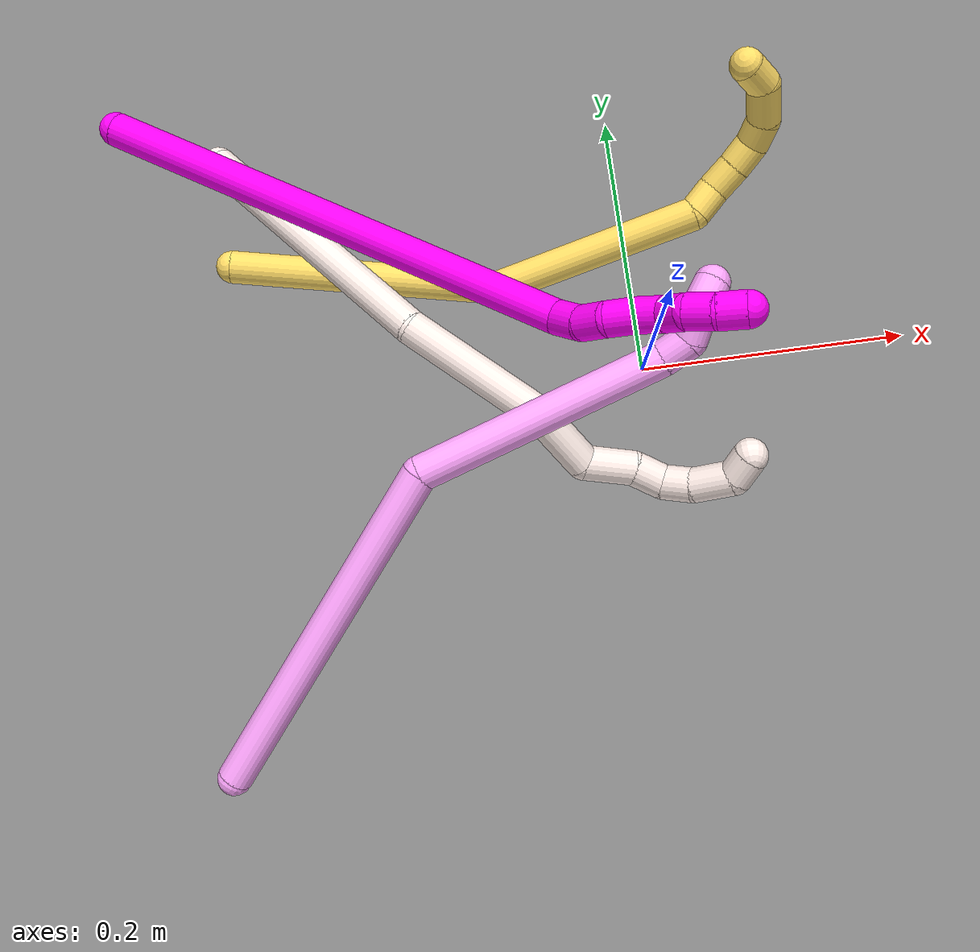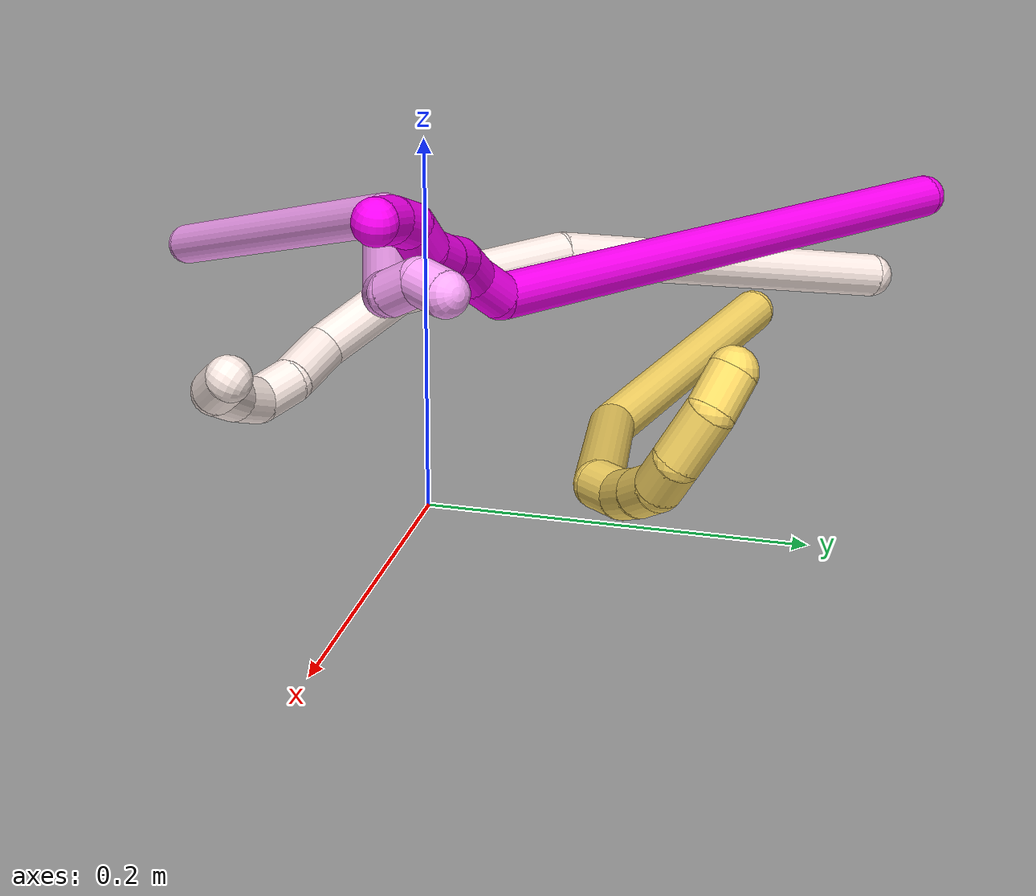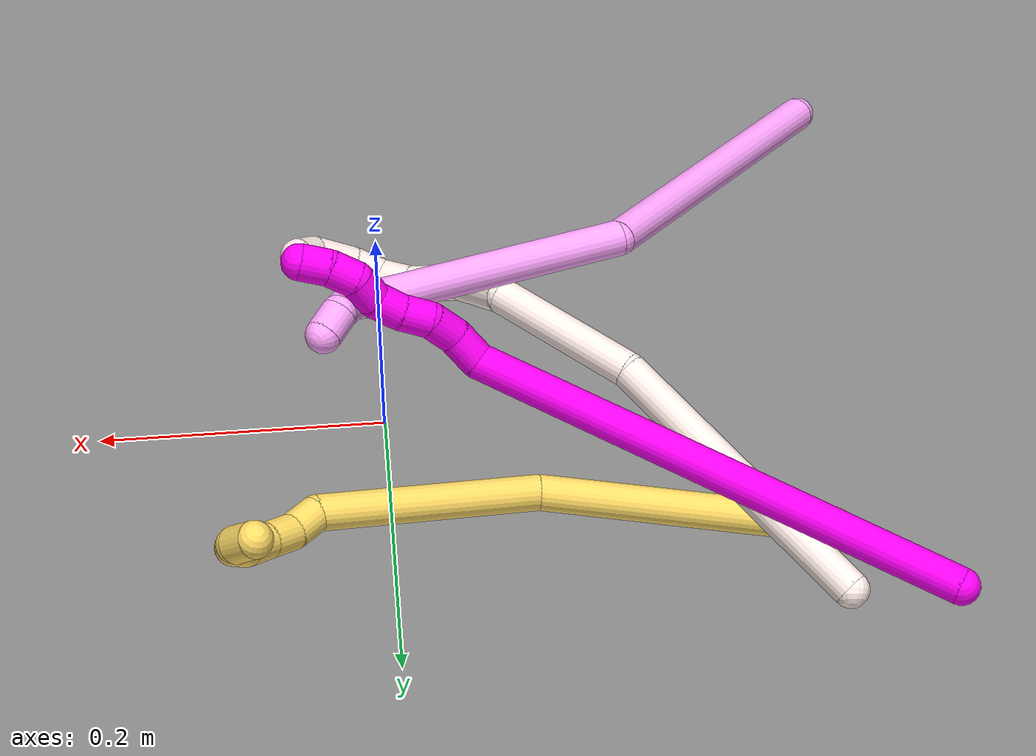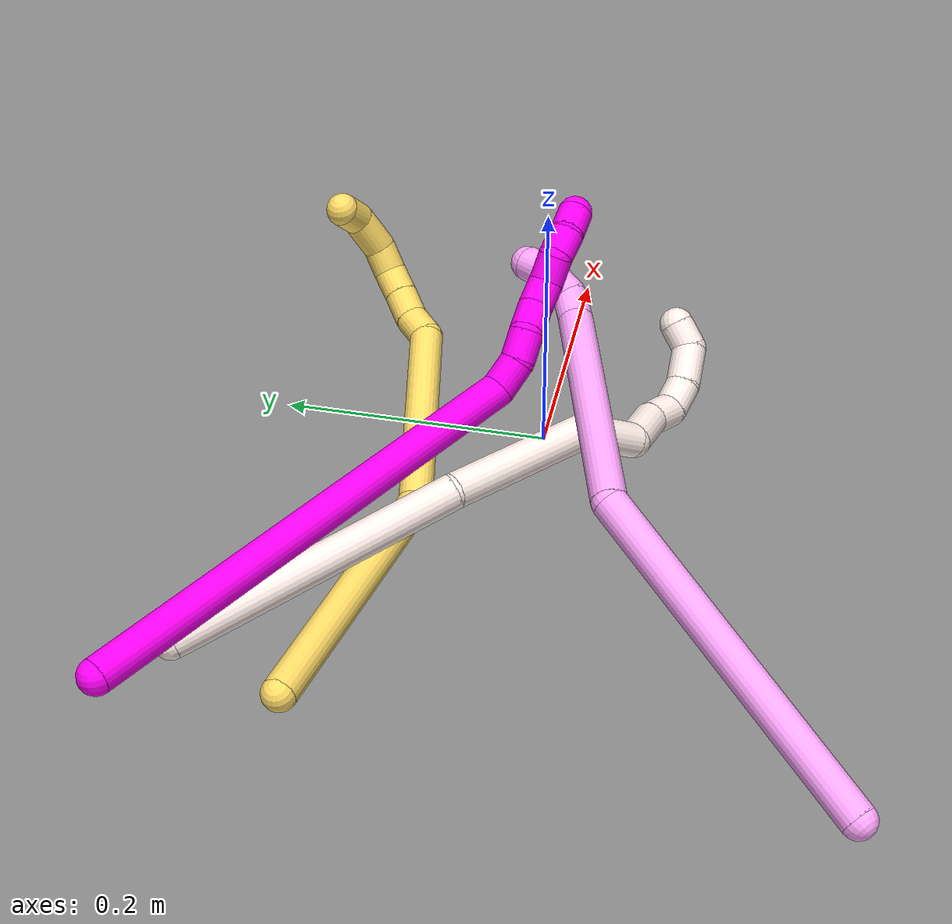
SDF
<sdf version="1.7">
 <world name="default">
  <model name="4">
   <static>0</static>
   <link name="4">
    <collision name="collision-cylinder-e_1_1_4">
     <pose>-0.004782 -0.009006 -0.128204 3.07146 -0.03719 -0.974888</pose>
     <geometry><cylinder><radius>0.0125</radius><length>0.257218</length></cylinder></geometry>
     <surface>
      <friction><ode><mu>1.16</mu><mu2>1.16</mu2><slip1>0</slip1><slip2>0</slip2></ode></friction>
      <contact><ode><kp>1e+06</kp><kd>1</kd><max_vel>0</max_vel><min_depth>0.001</min_depth></ode></contact>
     </surface>
    </collision>
    <visual name="visual-cylinder-e_1_1_4">
     <pose>-0.004782 -0.009006 -0.128204 3.07146 -0.03719 -0.974888</pose>
     <geometry><cylinder><radius>0.0125</radius><length>0.257218</length></cylinder></geometry>
     <material><ambient>1 0.65098 0.996078 1</ambient></material>
    </visual>
    <collision name="collision-cylinder-e_2_4_5">
     <pose>-0.051735 0.0076 -0.330928 -2.81054 -0.491392 1.96626</pose>
     <geometry><cylinder><radius>0.0125</radius><length>0.178747</length></cylinder></geometry>
     <surface>
      <friction><ode><mu>1.16</mu><mu2>1.16</mu2><slip1>0</slip1><slip2>0</slip2></ode></friction>
      <contact><ode><kp>1e+06</kp><kd>1</kd><max_vel>0</max_vel><min_depth>0.001</min_depth></ode></contact>
     </surface>
    </collision>
    <visual name="visual-cylinder-e_2_4_5">
     <pose>-0.051735 0.0076 -0.330928 -2.81054 -0.491392 1.96626</pose>
     <geometry><cylinder><radius>0.0125</radius><length>0.178747</length></cylinder></geometry>
     <material><ambient>1 0.65098 0.996078 1</ambient></material>
    </visual>
    <collision name="collision-cylinder-e_3_5_6">
     <pose>-0.098508 0.03332 -0.415221 -3.13056 -0.440047 3.09228</pose>
     <geometry><cylinder><radius>0.0125</radius><length>0.021607</length></cylinder></geometry>
     <surface>
      <friction><ode><mu>1.16</mu><mu2>1.16</mu2><slip1>0</slip1><slip2>0</slip2></ode></friction>
      <contact><ode><kp>1e+06</kp><kd>1</kd><max_vel>0</max_vel><min_depth>0.001</min_depth></ode></contact>
     </surface>
    </collision>
    <visual name="visual-cylinder-e_3_5_6">
     <pose>-0.098508 0.03332 -0.415221 -3.13056 -0.440047 3.09228</pose>
     <geometry><cylinder><radius>0.0125</radius><length>0.021607</length></cylinder></geometry>
     <material><ambient>1 0.65098 0.996078 1</ambient></material>
    </visual>
    <collision name="collision-cylinder-e_4_6_7">
     <pose>-0.101647 0.029945 -0.435525 2.82214 0.131165 0.774224</pose>
     <geometry><cylinder><radius>0.0125</radius><length>0.022374</length></cylinder></geometry>
     <surface>
      <friction><ode><mu>1.16</mu><mu2>1.16</mu2><slip1>0</slip1><slip2>0</slip2></ode></friction>
      <contact><ode><kp>1e+06</kp><kd>1</kd><max_vel>0</max_vel><min_depth>0.001</min_depth></ode></contact>
     </surface>
    </collision>
    <visual name="visual-cylinder-e_4_6_7">
     <pose>-0.101647 0.029945 -0.435525 2.82214 0.131165 0.774224</pose>
     <geometry><cylinder><radius>0.0125</radius><length>0.022374</length></cylinder></geometry>
     <material><ambient>1 0.65098 0.996078 1</ambient></material>
    </visual>
    <collision name="collision-cylinder-e_5_7_2">
     <pose>-0.098036 0.029374 -0.455406 -2.8397 0.215914 -1.23819</pose>
     <geometry><cylinder><radius>0.0125</radius><length>0.020054</length></cylinder></geometry>
     <surface>
      <friction><ode><mu>1.16</mu><mu2>1.16</mu2><slip1>0</slip1><slip2>0</slip2></ode></friction>
      <contact><ode><kp>1e+06</kp><kd>1</kd><max_vel>0</max_vel><min_depth>0.001</min_depth></ode></contact>
     </surface>
    </collision>
    <visual name="visual-cylinder-e_5_7_2">
     <pose>-0.098036 0.029374 -0.455406 -2.8397 0.215914 -1.23819</pose>
     <geometry><cylinder><radius>0.0125</radius><length>0.020054</length></cylinder></geometry>
     <material><ambient>1 0.65098 0.996078 1</ambient></material>
    </visual>
    <collision name="collision-sphere-2">
     <pose>-0.095888 0.032286 -0.464757 0 -0 0</pose>
     <geometry><sphere><radius>0.0125</radius></sphere></geometry>
     <surface>
      <friction><ode><mu>1.16</mu><mu2>1.16</mu2><slip1>0</slip1><slip2>0</slip2></ode></friction>
      <contact><ode><kp>1e+06</kp><kd>1</kd><max_vel>0</max_vel><min_depth>0.001</min_depth></ode></contact>
     </surface>
    </collision>
    <visual name="visual-sphere-2">
     <pose>-0.095888 0.032286 -0.464757 0 -0 0</pose>
     <geometry><sphere><radius>0.0125</radius></sphere></geometry>
     <material><ambient>1 0.65098 0.996078 1</ambient></material>
    </visual>
    <collision name="collision-sphere-7">
     <pose>-0.100184 0.026462 -0.446055 0 -0 0</pose>
     <geometry><sphere><radius>0.0125</radius></sphere></geometry>
     <surface>
      <friction><ode><mu>1.16</mu><mu2>1.16</mu2><slip1>0</slip1><slip2>0</slip2></ode></friction>
      <contact><ode><kp>1e+06</kp><kd>1</kd><max_vel>0</max_vel><min_depth>0.001</min_depth></ode></contact>
     </surface>
    </collision>
    <visual name="visual-sphere-7">
     <pose>-0.100184 0.026462 -0.446055 0 -0 0</pose>
     <geometry><sphere><radius>0.0125</radius></sphere></geometry>
     <material><ambient>1 0.65098 0.996078 1</ambient></material>
    </visual>
    <collision name="collision-sphere-6">
     <pose>-0.10311 0.033428 -0.424995 0 -0 0</pose>
     <geometry><sphere><radius>0.0125</radius></sphere></geometry>
     <surface>
      <friction><ode><mu>1.16</mu><mu2>1.16</mu2><slip1>0</slip1><slip2>0</slip2></ode></friction>
      <contact><ode><kp>1e+06</kp><kd>1</kd><max_vel>0</max_vel><min_depth>0.001</min_depth></ode></contact>
     </surface>
    </collision>
    <visual name="visual-sphere-6">
     <pose>-0.10311 0.033428 -0.424995 0 -0 0</pose>
     <geometry><sphere><radius>0.0125</radius></sphere></geometry>
     <material><ambient>1 0.65098 0.996078 1</ambient></material>
    </visual>
    <collision name="collision-sphere-5">
     <pose>-0.093906 0.033212 -0.405448 0 -0 0</pose>
     <geometry><sphere><radius>0.0125</radius></sphere></geometry>
     <surface>
      <friction><ode><mu>1.16</mu><mu2>1.16</mu2><slip1>0</slip1><slip2>0</slip2></ode></friction>
      <contact><ode><kp>1e+06</kp><kd>1</kd><max_vel>0</max_vel><min_depth>0.001</min_depth></ode></contact>
     </surface>
    </collision>
    <visual name="visual-sphere-5">
     <pose>-0.093906 0.033212 -0.405448 0 -0 0</pose>
     <geometry><sphere><radius>0.0125</radius></sphere></geometry>
     <material><ambient>1 0.65098 0.996078 1</ambient></material>
    </visual>
    <collision name="collision-sphere-1">
     <geometry><sphere><radius>0.0125</radius></sphere></geometry>
     <surface>
      <friction><ode><mu>1.16</mu><mu2>1.16</mu2><slip1>0</slip1><slip2>0</slip2></ode></friction>
      <contact><ode><kp>1e+06</kp><kd>1</kd><max_vel>0</max_vel><min_depth>0.001</min_depth></ode></contact>
     </surface>
    </collision>
    <visual name="visual-sphere-1">
     <geometry><sphere><radius>0.0125</radius></sphere></geometry>
     <material><ambient>1 0.65098 0.996078 1</ambient></material>
    </visual>
    <collision name="collision-sphere-4">
     <pose>-0.009564 -0.018012 -0.256408 0 -0 0</pose>
     <geometry><sphere><radius>0.0125</radius></sphere></geometry>
     <surface>
      <friction><ode><mu>1.16</mu><mu2>1.16</mu2><slip1>0</slip1><slip2>0</slip2></ode></friction>
      <contact><ode><kp>1e+06</kp><kd>1</kd><max_vel>0</max_vel><min_depth>0.001</min_depth></ode></contact>
     </surface>
    </collision>
    <visual name="visual-sphere-4">
     <pose>-0.009564 -0.018012 -0.256408 0 -0 0</pose>
     <geometry><sphere><radius>0.0125</radius></sphere></geometry>
     <material><ambient>1 0.65098 0.996078 1</ambient></material>
    </visual>
    <inertial>
     <pose>-0.033692 0.002042 -0.239955 0 -0 0</pose>
     <mass>0.5</mass>
     <inertia>
      <ixx>-0.000159</ixx>
      <ixy>0</ixy>
      <ixz>0</ixz>
      <iyy>-0.001338</iyy>
      <iyz>0</iyz>
      <izz>0.000207</izz>
     </inertia>
    </inertial>
   </link>
   <pose>-0.32923 -0.25634 0.012518 -1.84928 0.29363 2.35716</pose>
  </model>
  <model name="5">
   <static>0</static>
   <link name="5">
    <collision name="collision-cylinder-e_1_1_4">
     <pose>0.094611 -0.0227 -0.028262 2.4649 1.2049 2.19576</pose>
     <geometry><cylinder><radius>0.0125</radius><length>0.202635</length></cylinder></geometry>
     <surface>
      <friction><ode><mu>1.16</mu><mu2>1.16</mu2><slip1>0</slip1><slip2>0</slip2></ode></friction>
      <contact><ode><kp>1e+06</kp><kd>1</kd><max_vel>0</max_vel><min_depth>0.001</min_depth></ode></contact>
     </surface>
    </collision>
    <visual name="visual-cylinder-e_1_1_4">
     <pose>0.094611 -0.0227 -0.028262 2.4649 1.2049 2.19576</pose>
     <geometry><cylinder><radius>0.0125</radius><length>0.202635</length></cylinder></geometry>
     <material><ambient>1 0.858824 0.4 1</ambient></material>
    </visual>
    <collision name="collision-cylinder-e_2_4_5">
     <pose>0.267478 -0.034587 -0.059451 -1.83506 1.42861 -1.6952</pose>
     <geometry><cylinder><radius>0.0125</radius><length>0.158108</length></cylinder></geometry>
     <surface>
      <friction><ode><mu>1.16</mu><mu2>1.16</mu2><slip1>0</slip1><slip2>0</slip2></ode></friction>
      <contact><ode><kp>1e+06</kp><kd>1</kd><max_vel>0</max_vel><min_depth>0.001</min_depth></ode></contact>
     </surface>
    </collision>
    <visual name="visual-cylinder-e_2_4_5">
     <pose>0.267478 -0.034587 -0.059451 -1.83506 1.42861 -1.6952</pose>
     <geometry><cylinder><radius>0.0125</radius><length>0.158108</length></cylinder></geometry>
     <material><ambient>1 0.858824 0.4 1</ambient></material>
    </visual>
    <collision name="collision-cylinder-e_3_5_6">
     <pose>0.354274 -0.0163 -0.062352 -1.56747 0.851923 -0.849421</pose>
     <geometry><cylinder><radius>0.0125</radius><length>0.022696</length></cylinder></geometry>
     <surface>
      <friction><ode><mu>1.16</mu><mu2>1.16</mu2><slip1>0</slip1><slip2>0</slip2></ode></friction>
      <contact><ode><kp>1e+06</kp><kd>1</kd><max_vel>0</max_vel><min_depth>0.001</min_depth></ode></contact>
     </surface>
    </collision>
    <visual name="visual-cylinder-e_3_5_6">
     <pose>0.354274 -0.0163 -0.062352 -1.56747 0.851923 -0.849421</pose>
     <geometry><cylinder><radius>0.0125</radius><length>0.022696</length></cylinder></geometry>
     <material><ambient>1 0.858824 0.4 1</ambient></material>
    </visual>
    <collision name="collision-cylinder-e_4_6_7">
     <pose>0.372248 -0.003323 -0.059311 -1.06938 0.983701 -0.614506</pose>
     <geometry><cylinder><radius>0.0125</radius><length>0.022662</length></cylinder></geometry>
     <surface>
      <friction><ode><mu>1.16</mu><mu2>1.16</mu2><slip1>0</slip1><slip2>0</slip2></ode></friction>
      <contact><ode><kp>1e+06</kp><kd>1</kd><max_vel>0</max_vel><min_depth>0.001</min_depth></ode></contact>
     </surface>
    </collision>
    <visual name="visual-cylinder-e_4_6_7">
     <pose>0.372248 -0.003323 -0.059311 -1.06938 0.983701 -0.614506</pose>
     <geometry><cylinder><radius>0.0125</radius><length>0.022662</length></cylinder></geometry>
     <material><ambient>1 0.858824 0.4 1</ambient></material>
    </visual>
    <collision name="collision-cylinder-e_5_7_8">
     <pose>0.389909 0.007472 -0.052536 -0.953262 0.902932 -0.490622</pose>
     <geometry><cylinder><radius>0.0125</radius><length>0.020958</length></cylinder></geometry>
     <surface>
      <friction><ode><mu>1.16</mu><mu2>1.16</mu2><slip1>0</slip1><slip2>0</slip2></ode></friction>
      <contact><ode><kp>1e+06</kp><kd>1</kd><max_vel>0</max_vel><min_depth>0.001</min_depth></ode></contact>
     </surface>
    </collision>
    <visual name="visual-cylinder-e_5_7_8">
     <pose>0.389909 0.007472 -0.052536 -0.953262 0.902932 -0.490622</pose>
     <geometry><cylinder><radius>0.0125</radius><length>0.020958</length></cylinder></geometry>
     <material><ambient>1 0.858824 0.4 1</ambient></material>
    </visual>
    <collision name="collision-cylinder-e_6_8_9">
     <pose>0.404007 0.016713 -0.040981 -0.46882 0.591459 -0.145251</pose>
     <geometry><cylinder><radius>0.0125</radius><length>0.021057</length></cylinder></geometry>
     <surface>
      <friction><ode><mu>1.16</mu><mu2>1.16</mu2><slip1>0</slip1><slip2>0</slip2></ode></friction>
      <contact><ode><kp>1e+06</kp><kd>1</kd><max_vel>0</max_vel><min_depth>0.001</min_depth></ode></contact>
     </surface>
    </collision>
    <visual name="visual-cylinder-e_6_8_9">
     <pose>0.404007 0.016713 -0.040981 -0.46882 0.591459 -0.145251</pose>
     <geometry><cylinder><radius>0.0125</radius><length>0.021057</length></cylinder></geometry>
     <material><ambient>1 0.858824 0.4 1</ambient></material>
    </visual>
    <collision name="collision-cylinder-e_7_9_10">
     <pose>0.412342 0.026917 -0.019844 -0.438459 0.165744 -0.03701</pose>
     <geometry><cylinder><radius>0.0125</radius><length>0.029876</length></cylinder></geometry>
     <surface>
      <friction><ode><mu>1.16</mu><mu2>1.16</mu2><slip1>0</slip1><slip2>0</slip2></ode></friction>
      <contact><ode><kp>1e+06</kp><kd>1</kd><max_vel>0</max_vel><min_depth>0.001</min_depth></ode></contact>
     </surface>
    </collision>
    <visual name="visual-cylinder-e_7_9_10">
     <pose>0.412342 0.026917 -0.019844 -0.438459 0.165744 -0.03701</pose>
     <geometry><cylinder><radius>0.0125</radius><length>0.029876</length></cylinder></geometry>
     <material><ambient>1 0.858824 0.4 1</ambient></material>
    </visual>
    <collision name="collision-cylinder-e_8_10_2">
     <pose>0.4107 0.036244 0.00323 -0.305702 -0.382462 0.05963</pose>
     <geometry><cylinder><radius>0.0125</radius><length>0.022007</length></cylinder></geometry>
     <surface>
      <friction><ode><mu>1.16</mu><mu2>1.16</mu2><slip1>0</slip1><slip2>0</slip2></ode></friction>
      <contact><ode><kp>1e+06</kp><kd>1</kd><max_vel>0</max_vel><min_depth>0.001</min_depth></ode></contact>
     </surface>
    </collision>
    <visual name="visual-cylinder-e_8_10_2">
     <pose>0.4107 0.036244 0.00323 -0.305702 -0.382462 0.05963</pose>
     <geometry><cylinder><radius>0.0125</radius><length>0.022007</length></cylinder></geometry>
     <material><ambient>1 0.858824 0.4 1</ambient></material>
    </visual>
    <collision name="collision-sphere-2">
     <pose>0.406594 0.039316 0.012966 0 -0 0</pose>
     <geometry><sphere><radius>0.0125</radius></sphere></geometry>
     <surface>
      <friction><ode><mu>1.16</mu><mu2>1.16</mu2><slip1>0</slip1><slip2>0</slip2></ode></friction>
      <contact><ode><kp>1e+06</kp><kd>1</kd><max_vel>0</max_vel><min_depth>0.001</min_depth></ode></contact>
     </surface>
    </collision>
    <visual name="visual-sphere-2">
     <pose>0.406594 0.039316 0.012966 0 -0 0</pose>
     <geometry><sphere><radius>0.0125</radius></sphere></geometry>
     <material><ambient>1 0.858824 0.4 1</ambient></material>
    </visual>
    <collision name="collision-sphere-10">
     <pose>0.414807 0.033172 -0.006505 0 -0 0</pose>
     <geometry><sphere><radius>0.0125</radius></sphere></geometry>
     <surface>
      <friction><ode><mu>1.16</mu><mu2>1.16</mu2><slip1>0</slip1><slip2>0</slip2></ode></friction>
      <contact><ode><kp>1e+06</kp><kd>1</kd><max_vel>0</max_vel><min_depth>0.001</min_depth></ode></contact>
     </surface>
    </collision>
    <visual name="visual-sphere-10">
     <pose>0.414807 0.033172 -0.006505 0 -0 0</pose>
     <geometry><sphere><radius>0.0125</radius></sphere></geometry>
     <material><ambient>1 0.858824 0.4 1</ambient></material>
    </visual>
    <collision name="collision-sphere-9">
     <pose>0.409878 0.020662 -0.033184 0 -0 0</pose>
     <geometry><sphere><radius>0.0125</radius></sphere></geometry>
     <surface>
      <friction><ode><mu>1.16</mu><mu2>1.16</mu2><slip1>0</slip1><slip2>0</slip2></ode></friction>
      <contact><ode><kp>1e+06</kp><kd>1</kd><max_vel>0</max_vel><min_depth>0.001</min_depth></ode></contact>
     </surface>
    </collision>
    <visual name="visual-sphere-9">
     <pose>0.409878 0.020662 -0.033184 0 -0 0</pose>
     <geometry><sphere><radius>0.0125</radius></sphere></geometry>
     <material><ambient>1 0.858824 0.4 1</ambient></material>
    </visual>
    <collision name="collision-sphere-4">
     <pose>0.189221 -0.045401 -0.056525 0 -0 0</pose>
     <geometry><sphere><radius>0.0125</radius></sphere></geometry>
     <surface>
      <friction><ode><mu>1.16</mu><mu2>1.16</mu2><slip1>0</slip1><slip2>0</slip2></ode></friction>
      <contact><ode><kp>1e+06</kp><kd>1</kd><max_vel>0</max_vel><min_depth>0.001</min_depth></ode></contact>
     </surface>
    </collision>
    <visual name="visual-sphere-4">
     <pose>0.189221 -0.045401 -0.056525 0 -0 0</pose>
     <geometry><sphere><radius>0.0125</radius></sphere></geometry>
     <material><ambient>1 0.858824 0.4 1</ambient></material>
    </visual>
    <collision name="collision-sphere-1">
     <geometry><sphere><radius>0.0125</radius></sphere></geometry>
     <surface>
      <friction><ode><mu>1.16</mu><mu2>1.16</mu2><slip1>0</slip1><slip2>0</slip2></ode></friction>
      <contact><ode><kp>1e+06</kp><kd>1</kd><max_vel>0</max_vel><min_depth>0.001</min_depth></ode></contact>
     </surface>
    </collision>
    <visual name="visual-sphere-1">
     <geometry><sphere><radius>0.0125</radius></sphere></geometry>
     <material><ambient>1 0.858824 0.4 1</ambient></material>
    </visual>
    <collision name="collision-sphere-8">
     <pose>0.398137 0.012764 -0.048778 0 -0 0</pose>
     <geometry><sphere><radius>0.0125</radius></sphere></geometry>
     <surface>
      <friction><ode><mu>1.16</mu><mu2>1.16</mu2><slip1>0</slip1><slip2>0</slip2></ode></friction>
      <contact><ode><kp>1e+06</kp><kd>1</kd><max_vel>0</max_vel><min_depth>0.001</min_depth></ode></contact>
     </surface>
    </collision>
    <visual name="visual-sphere-8">
     <pose>0.398137 0.012764 -0.048778 0 -0 0</pose>
     <geometry><sphere><radius>0.0125</radius></sphere></geometry>
     <material><ambient>1 0.858824 0.4 1</ambient></material>
    </visual>
    <collision name="collision-sphere-5">
     <pose>0.345734 -0.023773 -0.062377 0 -0 0</pose>
     <geometry><sphere><radius>0.0125</radius></sphere></geometry>
     <surface>
      <friction><ode><mu>1.16</mu><mu2>1.16</mu2><slip1>0</slip1><slip2>0</slip2></ode></friction>
      <contact><ode><kp>1e+06</kp><kd>1</kd><max_vel>0</max_vel><min_depth>0.001</min_depth></ode></contact>
     </surface>
    </collision>
    <visual name="visual-sphere-5">
     <pose>0.345734 -0.023773 -0.062377 0 -0 0</pose>
     <geometry><sphere><radius>0.0125</radius></sphere></geometry>
     <material><ambient>1 0.858824 0.4 1</ambient></material>
    </visual>
    <collision name="collision-sphere-6">
     <pose>0.362814 -0.008827 -0.062328 0 -0 0</pose>
     <geometry><sphere><radius>0.0125</radius></sphere></geometry>
     <surface>
      <friction><ode><mu>1.16</mu><mu2>1.16</mu2><slip1>0</slip1><slip2>0</slip2></ode></friction>
      <contact><ode><kp>1e+06</kp><kd>1</kd><max_vel>0</max_vel><min_depth>0.001</min_depth></ode></contact>
     </surface>
    </collision>
    <visual name="visual-sphere-6">
     <pose>0.362814 -0.008827 -0.062328 0 -0 0</pose>
     <geometry><sphere><radius>0.0125</radius></sphere></geometry>
     <material><ambient>1 0.858824 0.4 1</ambient></material>
    </visual>
    <collision name="collision-sphere-7">
     <pose>0.381681 0.002181 -0.056294 0 -0 0</pose>
     <geometry><sphere><radius>0.0125</radius></sphere></geometry>
     <surface>
      <friction><ode><mu>1.16</mu><mu2>1.16</mu2><slip1>0</slip1><slip2>0</slip2></ode></friction>
      <contact><ode><kp>1e+06</kp><kd>1</kd><max_vel>0</max_vel><min_depth>0.001</min_depth></ode></contact>
     </surface>
    </collision>
    <visual name="visual-sphere-7">
     <pose>0.381681 0.002181 -0.056294 0 -0 0</pose>
     <geometry><sphere><radius>0.0125</radius></sphere></geometry>
     <material><ambient>1 0.858824 0.4 1</ambient></material>
    </visual>
    <inertial>
     <pose>0.23195 -0.016807 -0.040743 0 -0 0</pose>
     <mass>0.5</mass>
     <inertia>
      <ixx>4.2e-05</ixx>
      <ixy>0</ixy>
      <ixz>0</ixz>
      <iyy>0.001149</iyy>
      <iyz>0</iyz>
      <izz>-0.000885</izz>
     </inertia>
    </inertial>
   </link>
   <pose>-0.29984 0.118547 0.011498 -0.108638 -0.264552 0.040804</pose>
  </model>
  <model name="10">
   <static>0</static>
   <link name="10">
    <collision name="collision-cylinder-e_1_1_4">
     <pose>0.1469 -0.09533 0.022589 1.33813 0.982622 0.800518</pose>
     <geometry><cylinder><radius>0.0125</radius><length>0.353143</length></cylinder></geometry>
     <surface>
      <friction><ode><mu>1.16</mu><mu2>1.16</mu2><slip1>0</slip1><slip2>0</slip2></ode></friction>
      <contact><ode><kp>1e+06</kp><kd>1</kd><max_vel>0</max_vel><min_depth>0.001</min_depth></ode></contact>
     </surface>
    </collision>
    <visual name="visual-cylinder-e_1_1_4">
     <pose>0.1469 -0.09533 0.022589 1.33813 0.982622 0.800518</pose>
     <geometry><cylinder><radius>0.0125</radius><length>0.353143</length></cylinder></geometry>
     <material><ambient>1 0 0.964706 1</ambient></material>
    </visual>
    <collision name="collision-cylinder-e_2_4_5">
     <pose>0.300067 -0.197117 0.053064 0.68617 0.551355 0.201413</pose>
     <geometry><cylinder><radius>0.0125</radius><length>0.02393</length></cylinder></geometry>
     <surface>
      <friction><ode><mu>1.16</mu><mu2>1.16</mu2><slip1>0</slip1><slip2>0</slip2></ode></friction>
      <contact><ode><kp>1e+06</kp><kd>1</kd><max_vel>0</max_vel><min_depth>0.001</min_depth></ode></contact>
     </surface>
    </collision>
    <visual name="visual-cylinder-e_2_4_5">
     <pose>0.300067 -0.197117 0.053064 0.68617 0.551355 0.201413</pose>
     <geometry><cylinder><radius>0.0125</radius><length>0.02393</length></cylinder></geometry>
     <material><ambient>1 0 0.964706 1</ambient></material>
    </visual>
    <collision name="collision-cylinder-e_3_5_6">
     <pose>0.312971 -0.206355 0.069165 0.326436 0.653131 0.111438</pose>
     <geometry><cylinder><radius>0.0125</radius><length>0.021841</length></cylinder></geometry>
     <surface>
      <friction><ode><mu>1.16</mu><mu2>1.16</mu2><slip1>0</slip1><slip2>0</slip2></ode></friction>
      <contact><ode><kp>1e+06</kp><kd>1</kd><max_vel>0</max_vel><min_depth>0.001</min_depth></ode></contact>
     </surface>
    </collision>
    <visual name="visual-cylinder-e_3_5_6">
     <pose>0.312971 -0.206355 0.069165 0.326436 0.653131 0.111438</pose>
     <geometry><cylinder><radius>0.0125</radius><length>0.021841</length></cylinder></geometry>
     <material><ambient>1 0 0.964706 1</ambient></material>
    </visual>
    <collision name="collision-cylinder-e_4_6_7">
     <pose>0.328587 -0.210733 0.082551 0.299408 1.02836 0.169988</pose>
     <geometry><cylinder><radius>0.0125</radius><length>0.020969</length></cylinder></geometry>
     <surface>
      <friction><ode><mu>1.16</mu><mu2>1.16</mu2><slip1>0</slip1><slip2>0</slip2></ode></friction>
      <contact><ode><kp>1e+06</kp><kd>1</kd><max_vel>0</max_vel><min_depth>0.001</min_depth></ode></contact>
     </surface>
    </collision>
    <visual name="visual-cylinder-e_4_6_7">
     <pose>0.328587 -0.210733 0.082551 0.299408 1.02836 0.169988</pose>
     <geometry><cylinder><radius>0.0125</radius><length>0.020969</length></cylinder></geometry>
     <material><ambient>1 0 0.964706 1</ambient></material>
    </visual>
    <collision name="collision-cylinder-e_5_7_8">
     <pose>0.345145 -0.215208 0.093618 0.454354 0.857256 0.210489</pose>
     <geometry><cylinder><radius>0.0125</radius><length>0.020048</length></cylinder></geometry>
     <surface>
      <friction><ode><mu>1.16</mu><mu2>1.16</mu2><slip1>0</slip1><slip2>0</slip2></ode></friction>
      <contact><ode><kp>1e+06</kp><kd>1</kd><max_vel>0</max_vel><min_depth>0.001</min_depth></ode></contact>
     </surface>
    </collision>
    <visual name="visual-cylinder-e_5_7_8">
     <pose>0.345145 -0.215208 0.093618 0.454354 0.857256 0.210489</pose>
     <geometry><cylinder><radius>0.0125</radius><length>0.020048</length></cylinder></geometry>
     <material><ambient>1 0 0.964706 1</ambient></material>
    </visual>
    <collision name="collision-cylinder-e_6_8_9">
     <pose>0.356854 -0.22157 0.107934 0.392129 0.425595 0.085777</pose>
     <geometry><cylinder><radius>0.0125</radius><length>0.020011</length></cylinder></geometry>
     <surface>
      <friction><ode><mu>1.16</mu><mu2>1.16</mu2><slip1>0</slip1><slip2>0</slip2></ode></friction>
      <contact><ode><kp>1e+06</kp><kd>1</kd><max_vel>0</max_vel><min_depth>0.001</min_depth></ode></contact>
     </surface>
    </collision>
    <visual name="visual-cylinder-e_6_8_9">
     <pose>0.356854 -0.22157 0.107934 0.392129 0.425595 0.085777</pose>
     <geometry><cylinder><radius>0.0125</radius><length>0.020011</length></cylinder></geometry>
     <material><ambient>1 0 0.964706 1</ambient></material>
    </visual>
    <collision name="collision-cylinder-e_7_9_10">
     <pose>0.368936 -0.228011 0.121681 0.506968 0.917065 0.254372</pose>
     <geometry><cylinder><radius>0.0125</radius><length>0.020032</length></cylinder></geometry>
     <surface>
      <friction><ode><mu>1.16</mu><mu2>1.16</mu2><slip1>0</slip1><slip2>0</slip2></ode></friction>
      <contact><ode><kp>1e+06</kp><kd>1</kd><max_vel>0</max_vel><min_depth>0.001</min_depth></ode></contact>
     </surface>
    </collision>
    <visual name="visual-cylinder-e_7_9_10">
     <pose>0.368936 -0.228011 0.121681 0.506968 0.917065 0.254372</pose>
     <geometry><cylinder><radius>0.0125</radius><length>0.020032</length></cylinder></geometry>
     <material><ambient>1 0 0.964706 1</ambient></material>
    </visual>
    <collision name="collision-cylinder-e_8_10_2">
     <pose>0.385983 -0.232526 0.13089 0.381377 1.1396 0.246098</pose>
     <geometry><cylinder><radius>0.0125</radius><length>0.020026</length></cylinder></geometry>
     <surface>
      <friction><ode><mu>1.16</mu><mu2>1.16</mu2><slip1>0</slip1><slip2>0</slip2></ode></friction>
      <contact><ode><kp>1e+06</kp><kd>1</kd><max_vel>0</max_vel><min_depth>0.001</min_depth></ode></contact>
     </surface>
    </collision>
    <visual name="visual-cylinder-e_8_10_2">
     <pose>0.385983 -0.232526 0.13089 0.381377 1.1396 0.246098</pose>
     <geometry><cylinder><radius>0.0125</radius><length>0.020026</length></cylinder></geometry>
     <material><ambient>1 0 0.964706 1</ambient></material>
    </visual>
    <collision name="collision-sphere-2">
     <pose>0.39508 -0.234083 0.134775 0 -0 0</pose>
     <geometry><sphere><radius>0.0125</radius></sphere></geometry>
     <surface>
      <friction><ode><mu>1.16</mu><mu2>1.16</mu2><slip1>0</slip1><slip2>0</slip2></ode></friction>
      <contact><ode><kp>1e+06</kp><kd>1</kd><max_vel>0</max_vel><min_depth>0.001</min_depth></ode></contact>
     </surface>
    </collision>
    <visual name="visual-sphere-2">
     <pose>0.39508 -0.234083 0.134775 0 -0 0</pose>
     <geometry><sphere><radius>0.0125</radius></sphere></geometry>
     <material><ambient>1 0 0.964706 1</ambient></material>
    </visual>
    <collision name="collision-sphere-10">
     <pose>0.376887 -0.230968 0.127006 0 -0 0</pose>
     <geometry><sphere><radius>0.0125</radius></sphere></geometry>
     <surface>
      <friction><ode><mu>1.16</mu><mu2>1.16</mu2><slip1>0</slip1><slip2>0</slip2></ode></friction>
      <contact><ode><kp>1e+06</kp><kd>1</kd><max_vel>0</max_vel><min_depth>0.001</min_depth></ode></contact>
     </surface>
    </collision>
    <visual name="visual-sphere-10">
     <pose>0.376887 -0.230968 0.127006 0 -0 0</pose>
     <geometry><sphere><radius>0.0125</radius></sphere></geometry>
     <material><ambient>1 0 0.964706 1</ambient></material>
    </visual>
    <collision name="collision-sphere-9">
     <pose>0.360985 -0.225053 0.116356 0 -0 0</pose>
     <geometry><sphere><radius>0.0125</radius></sphere></geometry>
     <surface>
      <friction><ode><mu>1.16</mu><mu2>1.16</mu2><slip1>0</slip1><slip2>0</slip2></ode></friction>
      <contact><ode><kp>1e+06</kp><kd>1</kd><max_vel>0</max_vel><min_depth>0.001</min_depth></ode></contact>
     </surface>
    </collision>
    <visual name="visual-sphere-9">
     <pose>0.360985 -0.225053 0.116356 0 -0 0</pose>
     <geometry><sphere><radius>0.0125</radius></sphere></geometry>
     <material><ambient>1 0 0.964706 1</ambient></material>
    </visual>
    <collision name="collision-sphere-4">
     <pose>0.293799 -0.190659 0.045179 0 -0 0</pose>
     <geometry><sphere><radius>0.0125</radius></sphere></geometry>
     <surface>
      <friction><ode><mu>1.16</mu><mu2>1.16</mu2><slip1>0</slip1><slip2>0</slip2></ode></friction>
      <contact><ode><kp>1e+06</kp><kd>1</kd><max_vel>0</max_vel><min_depth>0.001</min_depth></ode></contact>
     </surface>
    </collision>
    <visual name="visual-sphere-4">
     <pose>0.293799 -0.190659 0.045179 0 -0 0</pose>
     <geometry><sphere><radius>0.0125</radius></sphere></geometry>
     <material><ambient>1 0 0.964706 1</ambient></material>
    </visual>
    <collision name="collision-sphere-1">
     <geometry><sphere><radius>0.0125</radius></sphere></geometry>
     <surface>
      <friction><ode><mu>1.16</mu><mu2>1.16</mu2><slip1>0</slip1><slip2>0</slip2></ode></friction>
      <contact><ode><kp>1e+06</kp><kd>1</kd><max_vel>0</max_vel><min_depth>0.001</min_depth></ode></contact>
     </surface>
    </collision>
    <visual name="visual-sphere-1">
     <geometry><sphere><radius>0.0125</radius></sphere></geometry>
     <material><ambient>1 0 0.964706 1</ambient></material>
    </visual>
    <collision name="collision-sphere-8">
     <pose>0.352723 -0.218088 0.099513 0 -0 0</pose>
     <geometry><sphere><radius>0.0125</radius></sphere></geometry>
     <surface>
      <friction><ode><mu>1.16</mu><mu2>1.16</mu2><slip1>0</slip1><slip2>0</slip2></ode></friction>
      <contact><ode><kp>1e+06</kp><kd>1</kd><max_vel>0</max_vel><min_depth>0.001</min_depth></ode></contact>
     </surface>
    </collision>
    <visual name="visual-sphere-8">
     <pose>0.352723 -0.218088 0.099513 0 -0 0</pose>
     <geometry><sphere><radius>0.0125</radius></sphere></geometry>
     <material><ambient>1 0 0.964706 1</ambient></material>
    </visual>
    <collision name="collision-sphere-5">
     <pose>0.306335 -0.203574 0.060949 0 -0 0</pose>
     <geometry><sphere><radius>0.0125</radius></sphere></geometry>
     <surface>
      <friction><ode><mu>1.16</mu><mu2>1.16</mu2><slip1>0</slip1><slip2>0</slip2></ode></friction>
      <contact><ode><kp>1e+06</kp><kd>1</kd><max_vel>0</max_vel><min_depth>0.001</min_depth></ode></contact>
     </surface>
    </collision>
    <visual name="visual-sphere-5">
     <pose>0.306335 -0.203574 0.060949 0 -0 0</pose>
     <geometry><sphere><radius>0.0125</radius></sphere></geometry>
     <material><ambient>1 0 0.964706 1</ambient></material>
    </visual>
    <collision name="collision-sphere-6">
     <pose>0.319607 -0.209136 0.07738 0 -0 0</pose>
     <geometry><sphere><radius>0.0125</radius></sphere></geometry>
     <surface>
      <friction><ode><mu>1.16</mu><mu2>1.16</mu2><slip1>0</slip1><slip2>0</slip2></ode></friction>
      <contact><ode><kp>1e+06</kp><kd>1</kd><max_vel>0</max_vel><min_depth>0.001</min_depth></ode></contact>
     </surface>
    </collision>
    <visual name="visual-sphere-6">
     <pose>0.319607 -0.209136 0.07738 0 -0 0</pose>
     <geometry><sphere><radius>0.0125</radius></sphere></geometry>
     <material><ambient>1 0 0.964706 1</ambient></material>
    </visual>
    <collision name="collision-sphere-7">
     <pose>0.337566 -0.212329 0.087723 0 -0 0</pose>
     <geometry><sphere><radius>0.0125</radius></sphere></geometry>
     <surface>
      <friction><ode><mu>1.16</mu><mu2>1.16</mu2><slip1>0</slip1><slip2>0</slip2></ode></friction>
      <contact><ode><kp>1e+06</kp><kd>1</kd><max_vel>0</max_vel><min_depth>0.001</min_depth></ode></contact>
     </surface>
    </collision>
    <visual name="visual-sphere-7">
     <pose>0.337566 -0.212329 0.087723 0 -0 0</pose>
     <geometry><sphere><radius>0.0125</radius></sphere></geometry>
     <material><ambient>1 0 0.964706 1</ambient></material>
    </visual>
    <inertial>
     <pose>0.203927 -0.13056 0.043168 0 -0 0</pose>
     <mass>0.5</mass>
     <inertia>
      <ixx>0.00293</ixx>
      <ixy>0</ixy>
      <ixz>0</ixz>
      <iyy>0.004192</iyy>
      <iyz>0</iyz>
      <izz>-0.00107</izz>
     </inertia>
    </inertial>
   </link>
   <pose>-0.361587 0.211778 0.072839 -0.148256 0.168929 -0.02527</pose>
  </model>
  <model name="11">
   <static>0</static>
   <link name="11">
    <collision name="collision-cylinder-e_1_1_4">
     <pose>0.064227 -0.033091 0.076243 0.40948 0.657906 0.141528</pose>
     <geometry><cylinder><radius>0.0125</radius><length>0.210078</length></cylinder></geometry>
     <surface>
      <friction><ode><mu>1.16</mu><mu2>1.16</mu2><slip1>0</slip1><slip2>0</slip2></ode></friction>
      <contact><ode><kp>1e+06</kp><kd>1</kd><max_vel>0</max_vel><min_depth>0.001</min_depth></ode></contact>
     </surface>
    </collision>
    <visual name="visual-cylinder-e_1_1_4">
     <pose>0.064227 -0.033091 0.076243 0.40948 0.657906 0.141528</pose>
     <geometry><cylinder><radius>0.0125</radius><length>0.210078</length></cylinder></geometry>
     <material><ambient>1 0.933333 0.909804 1</ambient></material>
    </visual>
    <collision name="collision-cylinder-e_2_4_5">
     <pose>0.164959 -0.093087 0.181933 0.74035 0.741141 0.299287</pose>
     <geometry><cylinder><radius>0.0125</radius><length>0.10814</length></cylinder></geometry>
     <surface>
      <friction><ode><mu>1.16</mu><mu2>1.16</mu2><slip1>0</slip1><slip2>0</slip2></ode></friction>
      <contact><ode><kp>1e+06</kp><kd>1</kd><max_vel>0</max_vel><min_depth>0.001</min_depth></ode></contact>
     </surface>
    </collision>
    <visual name="visual-cylinder-e_2_4_5">
     <pose>0.164959 -0.093087 0.181933 0.74035 0.741141 0.299287</pose>
     <geometry><cylinder><radius>0.0125</radius><length>0.10814</length></cylinder></geometry>
     <material><ambient>1 0.933333 0.909804 1</ambient></material>
    </visual>
    <collision name="collision-cylinder-e_3_5_6">
     <pose>0.210464 -0.141207 0.219848 1.19098 0.375382 0.255958</pose>
     <geometry><cylinder><radius>0.0125</radius><length>0.049102</length></cylinder></geometry>
     <surface>
      <friction><ode><mu>1.16</mu><mu2>1.16</mu2><slip1>0</slip1><slip2>0</slip2></ode></friction>
      <contact><ode><kp>1e+06</kp><kd>1</kd><max_vel>0</max_vel><min_depth>0.001</min_depth></ode></contact>
     </surface>
    </collision>
    <visual name="visual-cylinder-e_3_5_6">
     <pose>0.210464 -0.141207 0.219848 1.19098 0.375382 0.255958</pose>
     <geometry><cylinder><radius>0.0125</radius><length>0.049102</length></cylinder></geometry>
     <material><ambient>1 0.933333 0.909804 1</ambient></material>
    </visual>
    <collision name="collision-cylinder-e_4_6_7">
     <pose>0.235286 -0.17134 0.228991 1.49528 1.05619 0.991651</pose>
     <geometry><cylinder><radius>0.0125</radius><length>0.03635</length></cylinder></geometry>
     <surface>
      <friction><ode><mu>1.16</mu><mu2>1.16</mu2><slip1>0</slip1><slip2>0</slip2></ode></friction>
      <contact><ode><kp>1e+06</kp><kd>1</kd><max_vel>0</max_vel><min_depth>0.001</min_depth></ode></contact>
     </surface>
    </collision>
    <visual name="visual-cylinder-e_4_6_7">
     <pose>0.235286 -0.17134 0.228991 1.49528 1.05619 0.991651</pose>
     <geometry><cylinder><radius>0.0125</radius><length>0.03635</length></cylinder></geometry>
     <material><ambient>1 0.933333 0.909804 1</ambient></material>
    </visual>
    <collision name="collision-cylinder-e_5_7_8">
     <pose>0.259722 -0.187499 0.233209 1.11556 0.818646 0.528627</pose>
     <geometry><cylinder><radius>0.0125</radius><length>0.023594</length></cylinder></geometry>
     <surface>
      <friction><ode><mu>1.16</mu><mu2>1.16</mu2><slip1>0</slip1><slip2>0</slip2></ode></friction>
      <contact><ode><kp>1e+06</kp><kd>1</kd><max_vel>0</max_vel><min_depth>0.001</min_depth></ode></contact>
     </surface>
    </collision>
    <visual name="visual-cylinder-e_5_7_8">
     <pose>0.259722 -0.187499 0.233209 1.11556 0.818646 0.528627</pose>
     <geometry><cylinder><radius>0.0125</radius><length>0.023594</length></cylinder></geometry>
     <material><ambient>1 0.933333 0.909804 1</ambient></material>
    </visual>
    <collision name="collision-cylinder-e_6_8_9">
     <pose>0.2787 -0.194948 0.240811 0.051668 1.19715 0.035244</pose>
     <geometry><cylinder><radius>0.0125</radius><length>0.022263</length></cylinder></geometry>
     <surface>
      <friction><ode><mu>1.16</mu><mu2>1.16</mu2><slip1>0</slip1><slip2>0</slip2></ode></friction>
      <contact><ode><kp>1e+06</kp><kd>1</kd><max_vel>0</max_vel><min_depth>0.001</min_depth></ode></contact>
     </surface>
    </collision>
    <visual name="visual-cylinder-e_6_8_9">
     <pose>0.2787 -0.194948 0.240811 0.051668 1.19715 0.035244</pose>
     <geometry><cylinder><radius>0.0125</radius><length>0.022263</length></cylinder></geometry>
     <material><ambient>1 0.933333 0.909804 1</ambient></material>
    </visual>
    <collision name="collision-cylinder-e_7_9_10">
     <pose>0.303733 -0.192488 0.247377 -0.81641 1.32609 -0.651492</pose>
     <geometry><cylinder><radius>0.0125</radius><length>0.030242</length></cylinder></geometry>
     <surface>
      <friction><ode><mu>1.16</mu><mu2>1.16</mu2><slip1>0</slip1><slip2>0</slip2></ode></friction>
      <contact><ode><kp>1e+06</kp><kd>1</kd><max_vel>0</max_vel><min_depth>0.001</min_depth></ode></contact>
     </surface>
    </collision>
    <visual name="visual-cylinder-e_7_9_10">
     <pose>0.303733 -0.192488 0.247377 -0.81641 1.32609 -0.651492</pose>
     <geometry><cylinder><radius>0.0125</radius><length>0.030242</length></cylinder></geometry>
     <material><ambient>1 0.933333 0.909804 1</ambient></material>
    </visual>
    <collision name="collision-cylinder-e_8_10_2">
     <pose>0.325554 -0.183224 0.247108 -1.96941 0.784989 -1.1151</pose>
     <geometry><cylinder><radius>0.0125</radius><length>0.020232</length></cylinder></geometry>
     <surface>
      <friction><ode><mu>1.16</mu><mu2>1.16</mu2><slip1>0</slip1><slip2>0</slip2></ode></friction>
      <contact><ode><kp>1e+06</kp><kd>1</kd><max_vel>0</max_vel><min_depth>0.001</min_depth></ode></contact>
     </surface>
    </collision>
    <visual name="visual-cylinder-e_8_10_2">
     <pose>0.325554 -0.183224 0.247108 -1.96941 0.784989 -1.1151</pose>
     <geometry><cylinder><radius>0.0125</radius><length>0.020232</length></cylinder></geometry>
     <material><ambient>1 0.933333 0.909804 1</ambient></material>
    </visual>
    <collision name="collision-sphere-2">
     <pose>0.332704 -0.176629 0.244331 0 -0 0</pose>
     <geometry><sphere><radius>0.0125</radius></sphere></geometry>
     <surface>
      <friction><ode><mu>1.16</mu><mu2>1.16</mu2><slip1>0</slip1><slip2>0</slip2></ode></friction>
      <contact><ode><kp>1e+06</kp><kd>1</kd><max_vel>0</max_vel><min_depth>0.001</min_depth></ode></contact>
     </surface>
    </collision>
    <visual name="visual-sphere-2">
     <pose>0.332704 -0.176629 0.244331 0 -0 0</pose>
     <geometry><sphere><radius>0.0125</radius></sphere></geometry>
     <material><ambient>1 0.933333 0.909804 1</ambient></material>
    </visual>
    <collision name="collision-sphere-10">
     <pose>0.318404 -0.189819 0.249886 0 -0 0</pose>
     <geometry><sphere><radius>0.0125</radius></sphere></geometry>
     <surface>
      <friction><ode><mu>1.16</mu><mu2>1.16</mu2><slip1>0</slip1><slip2>0</slip2></ode></friction>
      <contact><ode><kp>1e+06</kp><kd>1</kd><max_vel>0</max_vel><min_depth>0.001</min_depth></ode></contact>
     </surface>
    </collision>
    <visual name="visual-sphere-10">
     <pose>0.318404 -0.189819 0.249886 0 -0 0</pose>
     <geometry><sphere><radius>0.0125</radius></sphere></geometry>
     <material><ambient>1 0.933333 0.909804 1</ambient></material>
    </visual>
    <collision name="collision-sphere-9">
     <pose>0.289063 -0.195158 0.244868 0 -0 0</pose>
     <geometry><sphere><radius>0.0125</radius></sphere></geometry>
     <surface>
      <friction><ode><mu>1.16</mu><mu2>1.16</mu2><slip1>0</slip1><slip2>0</slip2></ode></friction>
      <contact><ode><kp>1e+06</kp><kd>1</kd><max_vel>0</max_vel><min_depth>0.001</min_depth></ode></contact>
     </surface>
    </collision>
    <visual name="visual-sphere-9">
     <pose>0.289063 -0.195158 0.244868 0 -0 0</pose>
     <geometry><sphere><radius>0.0125</radius></sphere></geometry>
     <material><ambient>1 0.933333 0.909804 1</ambient></material>
    </visual>
    <collision name="collision-sphere-4">
     <pose>0.128455 -0.066181 0.152487 0 -0 0</pose>
     <geometry><sphere><radius>0.0125</radius></sphere></geometry>
     <surface>
      <friction><ode><mu>1.16</mu><mu2>1.16</mu2><slip1>0</slip1><slip2>0</slip2></ode></friction>
      <contact><ode><kp>1e+06</kp><kd>1</kd><max_vel>0</max_vel><min_depth>0.001</min_depth></ode></contact>
     </surface>
    </collision>
    <visual name="visual-sphere-4">
     <pose>0.128455 -0.066181 0.152487 0 -0 0</pose>
     <geometry><sphere><radius>0.0125</radius></sphere></geometry>
     <material><ambient>1 0.933333 0.909804 1</ambient></material>
    </visual>
    <collision name="collision-sphere-1">
     <geometry><sphere><radius>0.0125</radius></sphere></geometry>
     <surface>
      <friction><ode><mu>1.16</mu><mu2>1.16</mu2><slip1>0</slip1><slip2>0</slip2></ode></friction>
      <contact><ode><kp>1e+06</kp><kd>1</kd><max_vel>0</max_vel><min_depth>0.001</min_depth></ode></contact>
     </surface>
    </collision>
    <visual name="visual-sphere-1">
     <geometry><sphere><radius>0.0125</radius></sphere></geometry>
     <material><ambient>1 0.933333 0.909804 1</ambient></material>
    </visual>
    <collision name="collision-sphere-8">
     <pose>0.268336 -0.194738 0.236753 0 -0 0</pose>
     <geometry><sphere><radius>0.0125</radius></sphere></geometry>
     <surface>
      <friction><ode><mu>1.16</mu><mu2>1.16</mu2><slip1>0</slip1><slip2>0</slip2></ode></friction>
      <contact><ode><kp>1e+06</kp><kd>1</kd><max_vel>0</max_vel><min_depth>0.001</min_depth></ode></contact>
     </surface>
    </collision>
    <visual name="visual-sphere-8">
     <pose>0.268336 -0.194738 0.236753 0 -0 0</pose>
     <geometry><sphere><radius>0.0125</radius></sphere></geometry>
     <material><ambient>1 0.933333 0.909804 1</ambient></material>
    </visual>
    <collision name="collision-sphere-5">
     <pose>0.201463 -0.119993 0.211379 0 -0 0</pose>
     <geometry><sphere><radius>0.0125</radius></sphere></geometry>
     <surface>
      <friction><ode><mu>1.16</mu><mu2>1.16</mu2><slip1>0</slip1><slip2>0</slip2></ode></friction>
      <contact><ode><kp>1e+06</kp><kd>1</kd><max_vel>0</max_vel><min_depth>0.001</min_depth></ode></contact>
     </surface>
    </collision>
    <visual name="visual-sphere-5">
     <pose>0.201463 -0.119993 0.211379 0 -0 0</pose>
     <geometry><sphere><radius>0.0125</radius></sphere></geometry>
     <material><ambient>1 0.933333 0.909804 1</ambient></material>
    </visual>
    <collision name="collision-sphere-6">
     <pose>0.219465 -0.16242 0.228316 0 -0 0</pose>
     <geometry><sphere><radius>0.0125</radius></sphere></geometry>
     <surface>
      <friction><ode><mu>1.16</mu><mu2>1.16</mu2><slip1>0</slip1><slip2>0</slip2></ode></friction>
      <contact><ode><kp>1e+06</kp><kd>1</kd><max_vel>0</max_vel><min_depth>0.001</min_depth></ode></contact>
     </surface>
    </collision>
    <visual name="visual-sphere-6">
     <pose>0.219465 -0.16242 0.228316 0 -0 0</pose>
     <geometry><sphere><radius>0.0125</radius></sphere></geometry>
     <material><ambient>1 0.933333 0.909804 1</ambient></material>
    </visual>
    <collision name="collision-sphere-7">
     <pose>0.251108 -0.18026 0.229666 0 -0 0</pose>
     <geometry><sphere><radius>0.0125</radius></sphere></geometry>
     <surface>
      <friction><ode><mu>1.16</mu><mu2>1.16</mu2><slip1>0</slip1><slip2>0</slip2></ode></friction>
      <contact><ode><kp>1e+06</kp><kd>1</kd><max_vel>0</max_vel><min_depth>0.001</min_depth></ode></contact>
     </surface>
    </collision>
    <visual name="visual-sphere-7">
     <pose>0.251108 -0.18026 0.229666 0 -0 0</pose>
     <geometry><sphere><radius>0.0125</radius></sphere></geometry>
     <material><ambient>1 0.933333 0.909804 1</ambient></material>
    </visual>
    <inertial>
     <pose>0.156645 -0.096944 0.156308 0 -0 0</pose>
     <mass>0.5</mass>
     <inertia>
      <ixx>0.000845</ixx>
      <ixy>0</ixy>
      <ixz>0</ixz>
      <iyy>0.000946</iyy>
      <iyz>0</iyz>
      <izz>-0.000236</izz>
     </inertia>
    </inertial>
   </link>
   <pose>-0.296559 0.189454 0.042183 1.08335 -0.245701 0.059855</pose>
  </model>
 </world>
</sdf>
